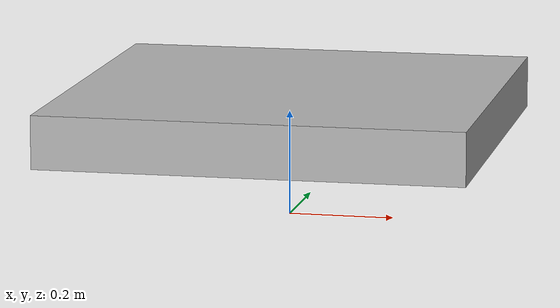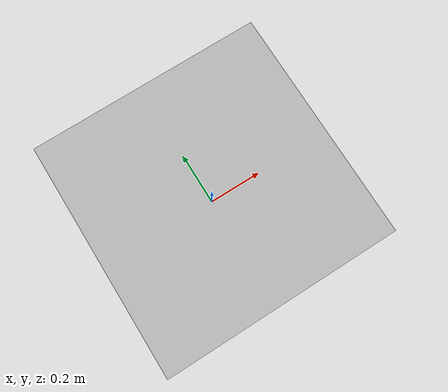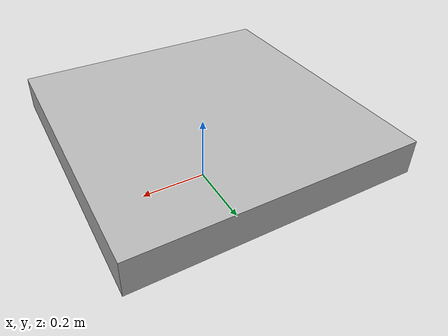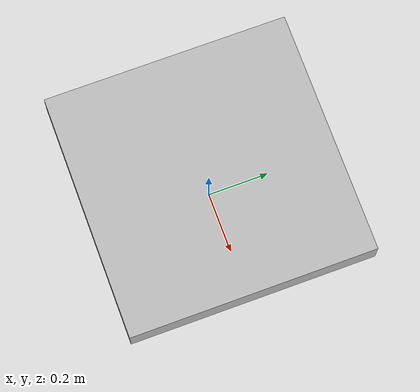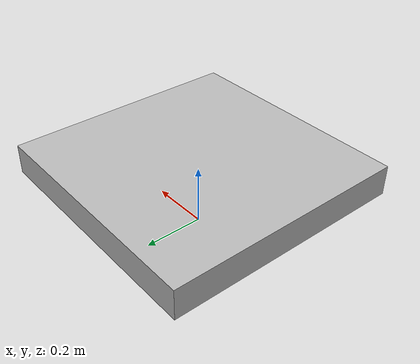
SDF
<?xml version="1.0"?>
<sdf version="1.6">
  <model name="aruco_marker0">
    <link name="link">
      <inertial>
        <mass>1</mass>
        <inertia>
          <ixx>0.166667</ixx>
          <ixy>0</ixy>
          <ixz>0</ixz>
          <iyy>0.166667</iyy>
          <iyz>0</iyz>
          <izz>0.166667</izz>
        </inertia>
      </inertial>
      <visual name="visual">
        <pose>0 0 0.2 0 0 0</pose>
        <geometry>
          <box>
            <size>0.8 0.8 0.1</size>
          </box>
        </geometry>
        <material>
          <script>
            <uri>model://aruco_marker0/materials/scripts</uri>
            <uri>model://aruco_marker0/materials/textures</uri>
            <name>Marker</name>
          </script>
        </material>
      </visual>
      <collision name="collision">
        <pose>0 0 0.2 0 0 0</pose>
        <geometry>
          <box>
            <size>0.8 0.8 0.1</size>
          </box>
        </geometry>
      </collision>
    </link>
  </model>
</sdf>
